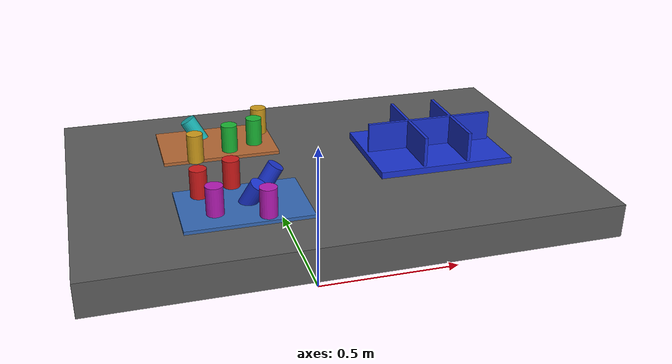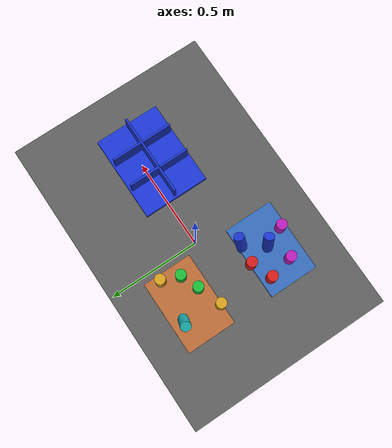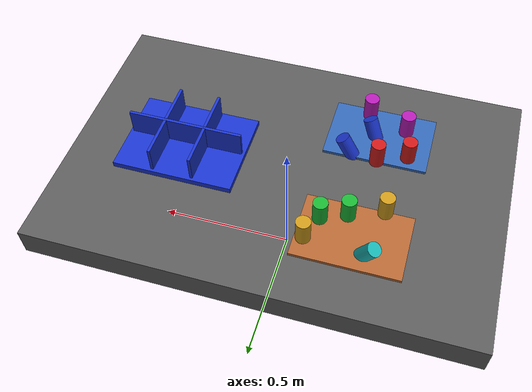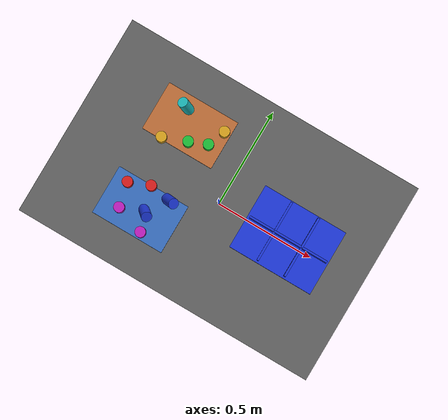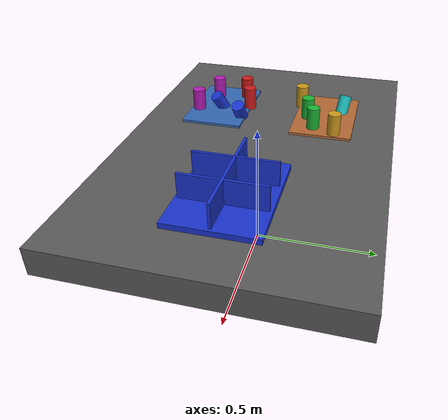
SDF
<?xml version="1.0" ?>
<sdf version="1.9">
  <!-- Standalone M1B scene.  The controller-backed Panda is spawned by the
       existing launch path; this file never alters the frozen M1A cube world. -->
  <world name="industrial_cylinder_v1">
    <physics name="bullet" type="bullet"><max_step_size>0.001</max_step_size><real_time_factor>1.0</real_time_factor></physics>
    <plugin name="gz::sim::systems::Physics" filename="gz-sim-physics-system"><engine><filename>gz-physics-bullet-featherstone-plugin</filename></engine></plugin>
    <plugin name="gz::sim::systems::UserCommands" filename="gz-sim-user-commands-system"/>
    <plugin name="gz::sim::systems::SceneBroadcaster" filename="gz-sim-scene-broadcaster-system"/>
    <plugin name="gz::sim::systems::Sensors" filename="gz-sim-sensors-system"><render_engine>ogre2</render_engine></plugin>
    <gravity>0 0 -9.81</gravity>
    <light type="directional" name="industrial_light"><pose>0 0 5 0 0 0</pose><direction>-0.3 0.2 -0.9</direction><diffuse>0.9 0.9 0.9 1</diffuse></light>
    <model name="industrial_work_table"><static>true</static><link name="link"><pose>0 0 0.4 0 0 0</pose><collision name="collision"><geometry><box><size>1.5 1.0 0.1</size></box></geometry></collision><visual name="visual"><geometry><box><size>1.5 1.0 0.1</size></box></geometry><material><diffuse>0.35 0.35 0.35 1</diffuse></material></visual></link></model>
    <model name="camera_fixture"><static>true</static><link name="camera_rgbd"><pose>-0.80 -0.80 1.40 0 0.77 0.93</pose><sensor name="front_rgbd" type="rgbd_camera"><always_on>1</always_on><update_rate>15</update_rate><topic>/xh/camera/rgbd</topic><camera><horizontal_fov>1.047</horizontal_fov><image><width>640</width><height>480</height><format>R8G8B8</format></image><clip><near>0.1</near><far>4.0</far></clip></camera></sensor></link></model>
    <model name="incoming_zone_a"><static>true</static><link name="link"><pose>-0.28 -0.22 0.455 0 0 0</pose><visual name="visual"><geometry><box><size>0.36 0.24 0.01</size></box></geometry><material><diffuse>0.2 0.4 0.7 1</diffuse></material></visual></link></model>
    <model name="incoming_zone_b"><static>true</static><link name="link"><pose>-0.28 0.22 0.455 0 0 0</pose><visual name="visual"><geometry><box><size>0.36 0.24 0.01</size></box></geometry><material><diffuse>0.7 0.4 0.2 1</diffuse></material></visual></link></model>
    <!-- M1B_RANDOM_PARTS_BEGIN -->
    <model name="cylinder_01"><pose>-0.2892 -0.1043 0.5000 0.0000 0.0000 -0.5188</pose><link name="link"><inertial><mass>0.06</mass></inertial><collision name="collision"><geometry><cylinder><radius>0.025</radius><length>0.09</length></cylinder></geometry></collision><visual name="visual"><geometry><cylinder><radius>0.025</radius><length>0.09</length></cylinder></geometry><material><diffuse>0.800 0.100 0.100 1</diffuse><specular>0.15 0.15 0.15 1</specular></material></visual></link></model>
    <model name="cylinder_02"><pose>-0.2482 0.1498 0.5000 3.1416 0.0000 -3.1312</pose><link name="link"><inertial><mass>0.06</mass></inertial><collision name="collision"><geometry><cylinder><radius>0.025</radius><length>0.09</length></cylinder></geometry></collision><visual name="visual"><geometry><cylinder><radius>0.025</radius><length>0.09</length></cylinder></geometry><material><diffuse>0.100 0.700 0.200 1</diffuse><specular>0.15 0.15 0.15 1</specular></material></visual></link></model>
    <model name="cylinder_03"><pose>-0.2536 -0.2216 0.4800 0.4500 -0.3000 1.4589</pose><link name="link"><inertial><mass>0.06</mass></inertial><collision name="collision"><geometry><cylinder><radius>0.025</radius><length>0.09</length></cylinder></geometry></collision><visual name="visual"><geometry><cylinder><radius>0.025</radius><length>0.09</length></cylinder></geometry><material><diffuse>0.100 0.200 0.800 1</diffuse><specular>0.15 0.15 0.15 1</specular></material></visual></link></model>
    <model name="cylinder_04"><pose>-0.3620 0.1065 0.5000 0.0000 0.0000 -0.2216</pose><link name="link"><inertial><mass>0.06</mass></inertial><collision name="collision"><geometry><cylinder><radius>0.025</radius><length>0.09</length></cylinder></geometry></collision><visual name="visual"><geometry><cylinder><radius>0.025</radius><length>0.09</length></cylinder></geometry><material><diffuse>0.800 0.600 0.100 1</diffuse><specular>0.15 0.15 0.15 1</specular></material></visual></link></model>
    <model name="cylinder_05"><pose>-0.3632 -0.2609 0.5000 3.1416 0.0000 -1.4553</pose><link name="link"><inertial><mass>0.06</mass></inertial><collision name="collision"><geometry><cylinder><radius>0.025</radius><length>0.09</length></cylinder></geometry></collision><visual name="visual"><geometry><cylinder><radius>0.025</radius><length>0.09</length></cylinder></geometry><material><diffuse>0.700 0.100 0.700 1</diffuse><specular>0.15 0.15 0.15 1</specular></material></visual></link></model>
    <model name="cylinder_06"><pose>-0.3373 0.2833 0.4800 0.4500 -0.3000 -1.3053</pose><link name="link"><inertial><mass>0.06</mass></inertial><collision name="collision"><geometry><cylinder><radius>0.025</radius><length>0.09</length></cylinder></geometry></collision><visual name="visual"><geometry><cylinder><radius>0.025</radius><length>0.09</length></cylinder></geometry><material><diffuse>0.100 0.700 0.700 1</diffuse><specular>0.15 0.15 0.15 1</specular></material></visual></link></model>
    <model name="cylinder_07"><pose>-0.3893 -0.1436 0.5000 0.0000 0.0000 -0.0447</pose><link name="link"><inertial><mass>0.06</mass></inertial><collision name="collision"><geometry><cylinder><radius>0.025</radius><length>0.09</length></cylinder></geometry></collision><visual name="visual"><geometry><cylinder><radius>0.025</radius><length>0.09</length></cylinder></geometry><material><diffuse>0.800 0.100 0.100 1</diffuse><specular>0.15 0.15 0.15 1</specular></material></visual></link></model>
    <model name="cylinder_08"><pose>-0.1631 0.1846 0.5000 3.1416 0.0000 -1.3117</pose><link name="link"><inertial><mass>0.06</mass></inertial><collision name="collision"><geometry><cylinder><radius>0.025</radius><length>0.09</length></cylinder></geometry></collision><visual name="visual"><geometry><cylinder><radius>0.025</radius><length>0.09</length></cylinder></geometry><material><diffuse>0.100 0.700 0.200 1</diffuse><specular>0.15 0.15 0.15 1</specular></material></visual></link></model>
    <model name="cylinder_09"><pose>-0.1845 -0.1204 0.4800 0.4500 -0.3000 1.9810</pose><link name="link"><inertial><mass>0.06</mass></inertial><collision name="collision"><geometry><cylinder><radius>0.025</radius><length>0.09</length></cylinder></geometry></collision><visual name="visual"><geometry><cylinder><radius>0.025</radius><length>0.09</length></cylinder></geometry><material><diffuse>0.100 0.200 0.800 1</diffuse><specular>0.15 0.15 0.15 1</specular></material></visual></link></model>
    <model name="cylinder_10"><pose>-0.1303 0.2699 0.5000 0.0000 0.0000 -2.5243</pose><link name="link"><inertial><mass>0.06</mass></inertial><collision name="collision"><geometry><cylinder><radius>0.025</radius><length>0.09</length></cylinder></geometry></collision><visual name="visual"><geometry><cylinder><radius>0.025</radius><length>0.09</length></cylinder></geometry><material><diffuse>0.800 0.600 0.100 1</diffuse><specular>0.15 0.15 0.15 1</specular></material></visual></link></model>
    <model name="cylinder_11"><pose>-0.2249 -0.3079 0.5000 3.1416 0.0000 -1.4218</pose><link name="link"><inertial><mass>0.06</mass></inertial><collision name="collision"><geometry><cylinder><radius>0.025</radius><length>0.09</length></cylinder></geometry></collision><visual name="visual"><geometry><cylinder><radius>0.025</radius><length>0.09</length></cylinder></geometry><material><diffuse>0.700 0.100 0.700 1</diffuse><specular>0.15 0.15 0.15 1</specular></material></visual></link></model>
    <!-- M1B_RANDOM_PARTS_END -->
    <model name="blue_partition_bin"><static>true</static><pose>0.36 0 0.45 0 0 0</pose><link name="link"><collision name="floor"><pose>0 0 0.01 0 0 0</pose><geometry><box><size>0.42 0.32 0.02</size></box></geometry></collision><visual name="floor_visual"><pose>0 0 0.01 0 0 0</pose><geometry><box><size>0.42 0.32 0.02</size></box></geometry><material><diffuse>0.1 0.2 0.8 1</diffuse></material></visual><visual name="row_divider"><pose>0 0 0.06 0 0 0</pose><geometry><box><size>0.40 0.01 0.10</size></box></geometry><material><diffuse>0.1 0.2 0.8 1</diffuse></material></visual><visual name="col_divider_a"><pose>-0.07 0 0.06 0 0 0</pose><geometry><box><size>0.01 0.30 0.10</size></box></geometry><material><diffuse>0.1 0.2 0.8 1</diffuse></material></visual><visual name="col_divider_b"><pose>0.07 0 0.06 0 0 0</pose><geometry><box><size>0.01 0.30 0.10</size></box></geometry><material><diffuse>0.1 0.2 0.8 1</diffuse></material></visual></link></model>
    <!-- Reserved only: second table, bin transport corridor, stackable-bin
         collision volume, and second arm mounting namespace. -->
  </world>
</sdf>
